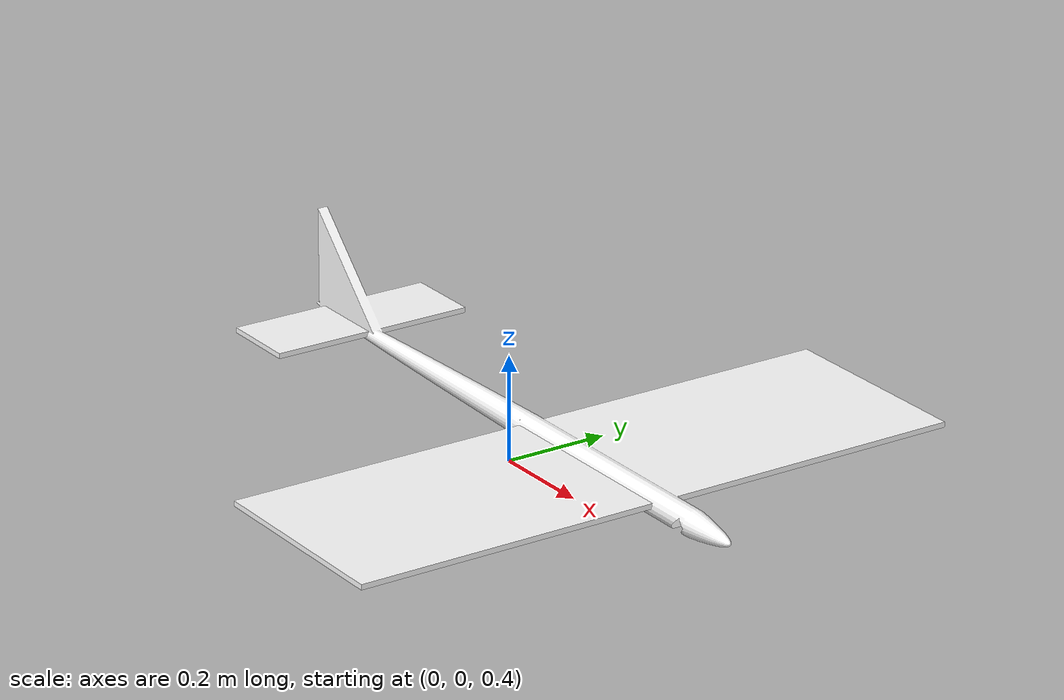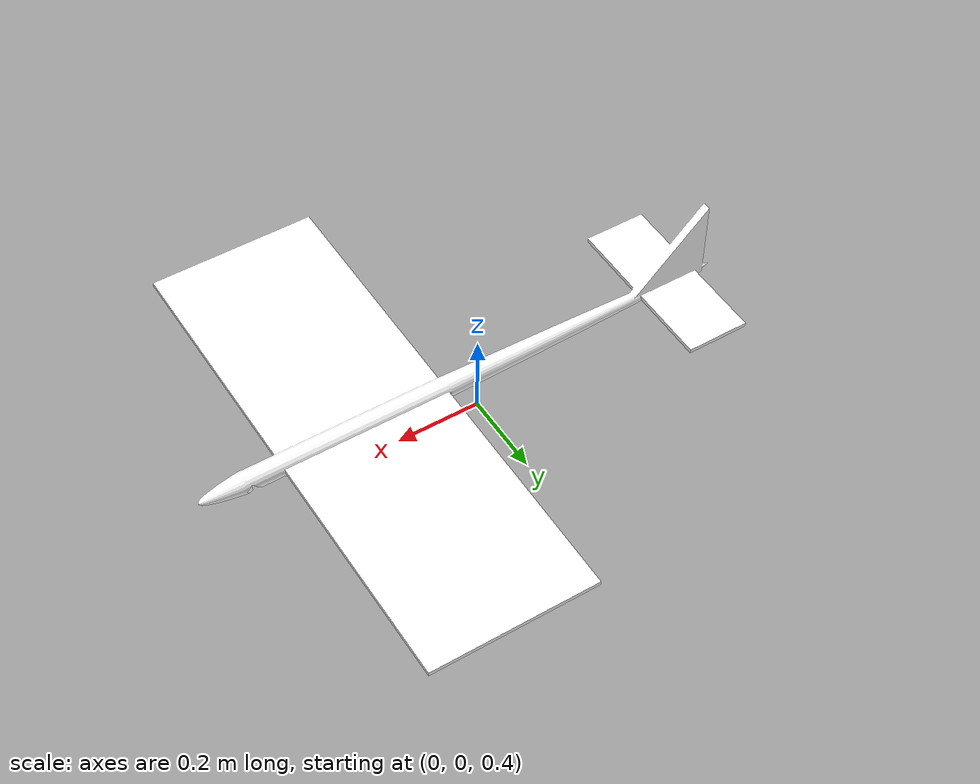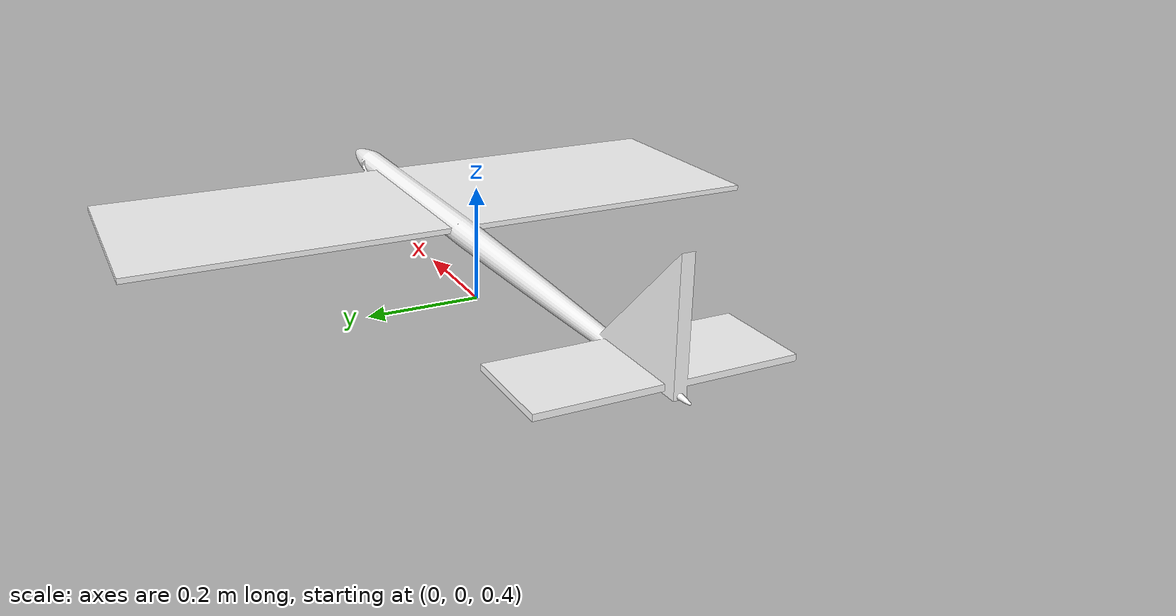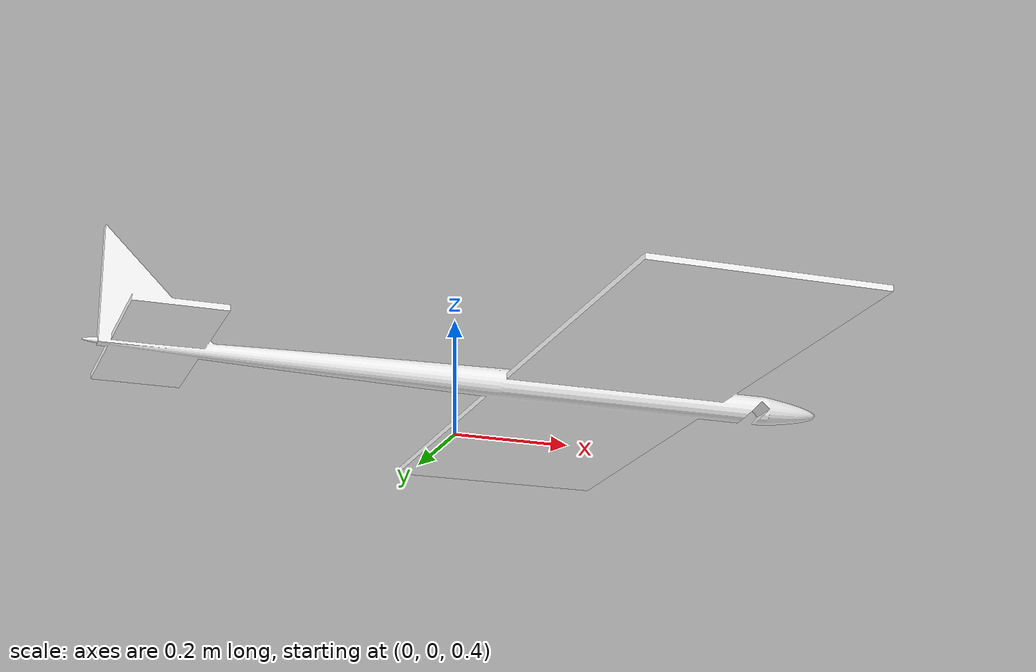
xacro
<?xml version="1.0"?>
<robot name="plane" xmlns:xacro="http://ros.org/wiki/xacro">

    <material name="white">
	    <color rgba="1 1 1 1"/>
    </material>

    <link name="world">

    </link>

    <joint name="world_joint" type="fixed">
        <origin xyz="0 0 0.5" rpy="0 0 0" />
        <parent link="world" />
        <child link="plane" />
    </joint>

    <link name="plane">

    </link>

    <joint name="imu_joint" type="floating">
        <origin xyz="0 0 0" rpy="0 0 0" />
        <parent link="plane" />
        <child link="imu_link" />
    </joint>

    <link name="imu_link">
    <visual>
      <origin rpy="0 0 1.5708" xyz="0 0 0"/>
      <geometry>
        <mesh filename="package://mpu_6050_driver/mesh/FUGMJ38JX8T7E5A.stl" scale="0.01 0.01 0.01"/>
      </geometry>
      <material name="white"/>
    </visual>
    </link>

</robot>
